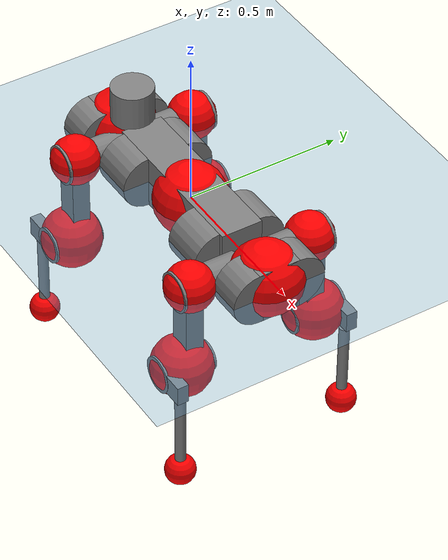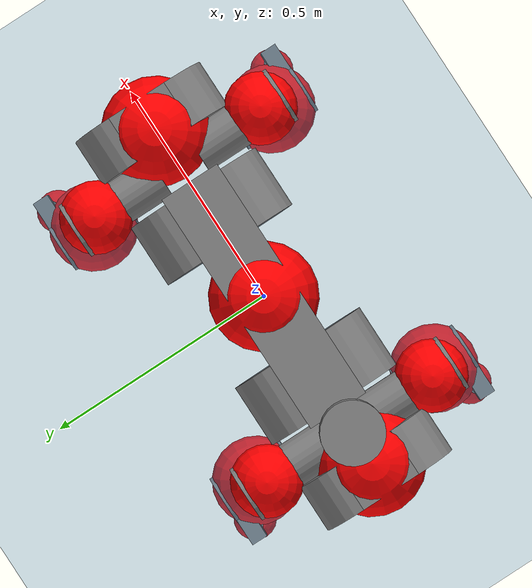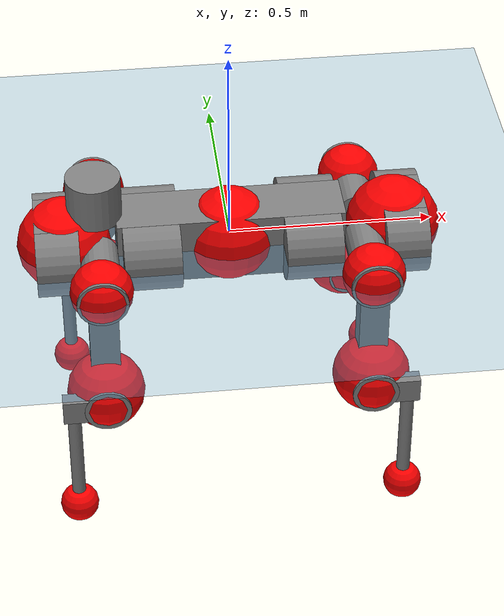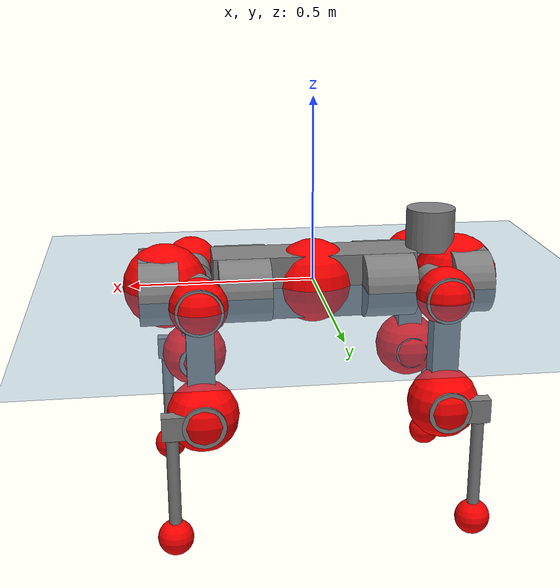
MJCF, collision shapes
<mujoco model="anymal_c">
  <compiler angle="radian" assetdir="assets" balanceinertia="true" inertiafromgeom="false"/>

  <option timestep="0.005" density="1.2" viscosity="2e-05"/>

  <size nkey="1"/>

  <visual>
    <quality shadowsize="8192"/>
    <map shadowclip="0.5"/>
  </visual>

  <default>
    <default class="/">
      <material specular="0" shininess="0.25"/>
      <geom contype="0" conaffinity="0" group="1" solref="-1000 -80"/>
      <site size="0.01 0.005 0.005" group="5"/>
      <general forcelimited="true" forcerange="-80 80" biastype="affine" gainprm="80" biasprm="0 -80 -2"/>
      <default class="anymal_c">
        <joint armature="0.01" damping="0.01" frictionloss="0.1"/>
        <default class="visual">
          <geom type="mesh" group="2"/>
          <default class="visual_zflip"/>
        </default>
        <default class="collision">
          <geom type="cylinder" group="3"/>
          <default class="foot">
            <geom size="0.03 0 0" type="sphere" condim="6" priority="1" friction="0.8 0.02 0.01" solimp="0.015 1 0.03"/>
          </default>
        </default>
      </default>
      <default class="reward_collision_sphere">
        <geom group="5" rgba="1 0 0 1"/>
      </default>
    </default>
  </default>

  <asset>
    <texture type="skybox" colorspace="auto" name="//unnamed_texture_0" builtin="gradient" rgb1="0.95 0.95 0.95" rgb2="0.95 0.95 0.95" width="100" height="600"/>
    <texture type="2d" colorspace="auto" name="texplane" builtin="checker" rgb1="0.345 0.575 0.748" rgb2="0.345 0.575 0.748" markrgb="1 1 1" width="512" height="512"/>
    <texture type="2d" colorspace="linear" name="base" file="base.png"/>
    <texture type="2d" colorspace="linear" name="top_shell" file="top_shell.png"/>
    <texture type="2d" colorspace="linear" name="bottom_shell" file="bottom_shell.png"/>
    <texture type="2d" colorspace="linear" name="remote" file="remote.png"/>
    <texture type="2d" colorspace="linear" name="hatch" file="hatch.png"/>
    <texture type="2d" colorspace="linear" name="handle" file="handle.png"/>
    <texture type="2d" colorspace="linear" name="face" file="face.png"/>
    <texture type="2d" colorspace="linear" name="battery" file="battery.png"/>
    <texture type="2d" colorspace="linear" name="lidar_cage" file="lidar_cage.png"/>
    <texture type="2d" colorspace="linear" name="depth_camera" file="depth_camera.png"/>
    <texture type="2d" colorspace="linear" name="wide_angle_camera" file="wide_angle_camera.png"/>
    <texture type="2d" colorspace="linear" name="lidar" file="lidar.png"/>
    <texture type="2d" colorspace="linear" name="drive" file="drive.png"/>
    <texture type="2d" colorspace="linear" name="hip_l" file="hip_l.png"/>
    <texture type="2d" colorspace="linear" name="shank_l" file="shank_l.png"/>
    <texture type="2d" colorspace="linear" name="foot" file="foot.png"/>
    <texture type="2d" colorspace="linear" name="thigh" file="thigh.png"/>
    <texture type="2d" colorspace="linear" name="shank_r" file="shank_r.png"/>
    <texture type="2d" colorspace="linear" name="hip_r" file="hip_r.png"/>
    <material name="MatPlane" class="/" texture="texplane" texuniform="true" texrepeat="2 2" specular="0.9" shininess="0.5"/>
    <material name="black_plastic" class="/" rgba="0.007 0.007 0.007 1"/>
    <material name="green" class="/" rgba="0.052 0.178 0.033 1"/>
    <material name="red" class="/" rgba="0.178 0.006 0.005 1"/>
    <material name="yellow" class="/" rgba="0.178 0.119 0.006 1"/>
    <material name="lwl" class="/" rgba="0.8 0.8 0.8 1"/>
    <material name="base" class="/" texture="base"/>
    <material name="top_shell" class="/" texture="top_shell"/>
    <material name="bottom_shell" class="/" texture="bottom_shell"/>
    <material name="hip_l" class="/" texture="hip_l"/>
    <material name="thigh" class="/" texture="thigh"/>
    <material name="shank_l" class="/" texture="shank_l"/>
    <material name="foot" class="/" texture="foot"/>
    <material name="hip_r" class="/" texture="hip_r"/>
    <material name="shank" class="/" texture="shank_r"/>
    <material name="hatch" class="/" texture="hatch"/>
    <material name="remote" class="/" texture="remote"/>
    <material name="handle" class="/" texture="handle"/>
    <material name="face" class="/" texture="face"/>
    <material name="depth_camera" class="/" texture="depth_camera"/>
    <material name="wide_angle_camera" class="/" texture="wide_angle_camera"/>
    <material name="battery" class="/" texture="battery"/>
    <material name="lidar_cage" class="/" texture="lidar_cage"/>
    <material name="lidar" class="/" texture="lidar"/>
    <material name="drive" class="/" texture="drive"/>
    <mesh name="base_0" class="/" file="base_0.obj"/>
    <mesh name="base_1" class="/" file="base_1.obj"/>
    <mesh name="base_2" class="/" file="base_2.obj"/>
    <mesh name="base_3" class="/" file="base_3.obj"/>
    <mesh name="base_4" class="/" file="base_4.obj"/>
    <mesh name="base_5" class="/" file="base_5.obj"/>
    <mesh name="top_shell" class="/" file="top_shell.obj"/>
    <mesh name="bottom_shell" class="/" file="bottom_shell.obj"/>
    <mesh name="remote" class="/" file="remote.obj"/>
    <mesh name="handle" class="/" file="handle.obj"/>
    <mesh name="face" class="/" file="face.obj"/>
    <mesh name="wide_angle_camera" class="/" file="wide_angle_camera.obj"/>
    <mesh name="depth_camera" class="/" file="depth_camera.obj"/>
    <mesh name="battery" class="/" file="battery.obj"/>
    <mesh name="lidar_cage" class="/" file="lidar_cage.obj"/>
    <mesh name="lidar" class="/" file="lidar.obj"/>
    <mesh name="drive" class="/" file="drive.obj"/>
    <mesh name="hip_l" class="/" file="hip_l.obj"/>
    <mesh name="thigh" class="/" file="thigh.obj"/>
    <mesh name="shank_l" class="/" file="shank_l.obj"/>
    <mesh name="foot" class="/" file="foot.obj"/>
    <mesh name="hip_r" class="/" file="hip_r.obj"/>
    <mesh name="hatch" class="/" file="hatch.obj"/>
    <mesh name="shank_r" class="/" file="shank_r.obj"/>
  </asset>

  <worldbody>
    <geom name="floor" class="/" size="100 100 0.125" type="plane" group="0" material="MatPlane"/>
    <light name="toplight_shadow" class="/" pos="0 0 5" dir="0.0990148 0.0990148 -0.990148" type="directional" ambient="0.04 0.04 0.04" diffuse="0.55 0.55 0.55" specular="0.12 0.12 0.12"/>
    <light name="toplight_fill" class="/" pos="0 0 5" dir="0.0990148 0.0990148 -0.990148" type="directional" castshadow="false" ambient="0.04 0.04 0.04" diffuse="0.3 0.3 0.3" specular="0.08 0.08 0.08"/>
    <body name="trunk" childclass="anymal_c" pos="-4.80878e-05 0.000119027 -0.00243926" quat="1 0.000125647 -7.06428e-05 -0.000192223">
      <inertial pos="0.00208463 0.0026422 0.0527444" quat="0.499817 0.499923 0.499627 0.500632" mass="16.2529" diaginertia="0.383633 0.460992 0.240315"/>
      <joint name="//unnamed_joint_0" type="free" armature="0" damping="0" frictionloss="0"/>
      <geom name="//unnamed_geom_1" class="visual" material="green" mesh="base_0"/>
      <geom name="//unnamed_geom_2" class="visual" material="yellow" mesh="base_1"/>
      <geom name="//unnamed_geom_3" class="visual" material="red" mesh="base_2"/>
      <geom name="//unnamed_geom_4" class="visual" material="black_plastic" mesh="base_3"/>
      <geom name="//unnamed_geom_5" class="visual" material="lwl" mesh="base_4"/>
      <geom name="//unnamed_geom_6" class="visual" material="base" mesh="base_5"/>
      <geom name="trunk_1" class="collision" size="0.277565 0.0669984 0.0861408" type="box"/>
      <geom name="trunk_2" class="collision" size="0.0861408 0.0693912" pos="0.19579 0.0662147 0" quat="0.707107 0 0.707107 0"/>
      <geom name="trunk_3" class="collision" size="0.0861408 0.0693912" pos="-0.19579 0.0662147 0" quat="0.707107 0 0.707107 0"/>
      <geom name="trunk_4" class="collision" size="0.0861408 0.0693912" pos="0.19579 -0.0662147 0" quat="0.707107 0 0.707107 0"/>
      <geom name="trunk_5" class="collision" size="0.0861408 0.0693912" pos="-0.19579 -0.0662147 0" quat="0.707107 0 0.707107 0"/>
      <geom name="//unnamed_geom_12" class="visual" material="top_shell" mesh="top_shell"/>
      <geom name="//unnamed_geom_13" class="visual" material="bottom_shell" mesh="bottom_shell"/>
      <geom name="//unnamed_geom_14" class="visual" material="remote" mesh="remote"/>
      <geom name="//unnamed_geom_15" class="visual" material="handle" mesh="handle"/>
      <geom name="//unnamed_geom_16" class="visual" pos="0.373126 0 0" quat="1 0 0 0" material="face" mesh="face"/>
      <geom name="trunk_6" class="collision" size="0.0526416 0.0669984 0.0861408" pos="0.422636 0 0" type="box"/>
      <geom name="//unnamed_geom_18" class="collision" size="0.0861408 0.0526416" pos="0.422636 0.0662147 0" quat="0.707107 0 0.707107 0"/>
      <geom name="//unnamed_geom_19" class="collision" size="0.0861408 0.0526416" pos="0.422636 -0.0662147 0" quat="0.707107 0 0.707107 0"/>
      <geom name="//unnamed_geom_20" class="visual" pos="0.415575 0 -0.0308879" quat="0.965926 0 0.258819 0" material="depth_camera" mesh="depth_camera"/>
      <geom name="//unnamed_geom_21" class="visual" pos="0.461794 0 0.015348" material="wide_angle_camera" mesh="wide_angle_camera"/>
      <geom name="//unnamed_geom_22" class="visual_zflip" pos="-0.373126 0 0" quat="0 0 0 1" material="face" mesh="face"/>
      <geom name="trunk_7" class="collision" size="0.0526416 0.0669984 0.0861408" pos="-0.422636 0 0" quat="0 0 0 1" type="box"/>
      <geom name="//unnamed_geom_24" class="collision" size="0.0861408 0.0526416" pos="-0.422636 -0.0662147 0" quat="0 -0.707107 0 0.707107"/>
      <geom name="//unnamed_geom_25" class="collision" size="0.0861408 0.0526416" pos="-0.422636 0.0662147 0" quat="0 -0.707107 0 0.707107"/>
      <geom name="//unnamed_geom_26" class="visual" pos="-0.415575 0 -0.0308879" quat="0 -0.258819 0 0.965926" material="depth_camera" mesh="depth_camera"/>
      <geom name="//unnamed_geom_27" class="visual_zflip" pos="-0.461794 0 0.015348" quat="0 0 0 1" material="wide_angle_camera" mesh="wide_angle_camera"/>
      <geom name="//unnamed_geom_28" class="visual" material="battery" mesh="battery"/>
      <geom name="//unnamed_geom_29" class="visual" pos="0 0.0729307 0.0288331" quat="0.683013 -0.183013 0.183013 0.683013" material="depth_camera" mesh="depth_camera"/>
      <geom name="//unnamed_geom_30" class="visual" pos="0 -0.0729307 0.0288331" quat="0.683013 0.183013 0.183013 -0.683013" material="depth_camera" mesh="depth_camera"/>
      <geom name="//unnamed_geom_31" class="visual" pos="-0.327667 0 0.075356" quat="1 0 0 0" material="lidar_cage" mesh="lidar_cage"/>
      <geom name="trunk_8" class="collision" size="0.0669984 0.0574272" pos="-0.327667 0 0.136871"/>
      <geom name="//unnamed_geom_33" class="visual" pos="-0.327667 1.797e-05 0.145791" quat="0.707107 0 0 -0.707107" material="lidar" mesh="lidar"/>
      <geom name="//unnamed_geom_34" class="visual" pos="0.269965 0.0984043 -1.36842e-09" quat="0.258819 0.965926 0 0" material="drive" mesh="drive"/>
      <geom name="//unnamed_geom_35" class="visual" pos="0.269965 -0.0984043 1.36842e-09" quat="0.258819 -0.965926 0 0" material="drive" mesh="drive"/>
      <geom name="//unnamed_geom_36" class="visual" pos="-0.269965 0.0984043 1.36842e-09" quat="0 0 0.965926 -0.258819" material="drive" mesh="drive"/>
      <geom name="//unnamed_geom_37" class="visual" pos="-0.269965 -0.0984043 -1.36842e-09" quat="0 0 -0.965926 -0.258819" material="drive" mesh="drive"/>
      <geom name="//unnamed_geom_38" class="visual" pos="0.104421 0 0.0748434" quat="1 0 0 0" material="hatch" mesh="hatch"/>
      <geom name="//unnamed_geom_39" class="reward_collision_sphere" size="0.114854"/>
      <geom name="//unnamed_geom_40" class="reward_collision_sphere" size="0.114854" pos="0.405083 0 0"/>
      <geom name="//unnamed_geom_41" class="reward_collision_sphere" size="0.114854" pos="-0.405083 0 0"/>
      <site name="imu" pos="0.223634 9.23204e-05 0.0483563" size="0.0095712"/>
      <camera name="track" pos="0 -1.89185 0" quat="0.707107 0.707107 0 0" mode="trackcom"/>
      <camera name="ego_camera" pos="0.405083 0 -0.0410101" quat="-0.5 -0.5 0.5 0.5"/>
      <body name="LF_HIP" pos="0.269924 0.0973278 -0.00123846" quat="0.258775 0.965938 -3.58154e-05 0.000332003">
        <inertial pos="0.0482883 -0.0146976 -0.00969691" quat="-0.125232 0.707164 -0.136601 0.682332" mass="2.47628" diaginertia="0.0034778 0.00368141 0.00383136"/>
        <joint name="LF_HAA" pos="0 0 0" axis="0.999997 -0.000160264 0.00240051" range="-0.732017 0.486449" armature="0.0105465" damping="0.0177094" frictionloss="0.0824699"/>
        <geom name="//unnamed_geom_42" class="visual" pos="0 -8.04977e-05 1.32217e-05" quat="0.258819 -0.965926 0 0" material="hip_l" mesh="hip_l"/>
        <geom name="//unnamed_geom_43" class="visual" pos="0.053921 -0.0659672 -0.0386729" quat="0.183013 -0.683013 0.683013 0.183013" material="drive" mesh="drive"/>
        <geom name="//unnamed_geom_44" class="collision" size="0.047856 0.0669984" pos="0.053921 -0.0113131 -0.00707936" quat="-0.353553 -0.612372 0.612372 -0.353553"/>
        <body name="LF_THIGH" pos="0.0541021 -0.068482 -0.0422021" quat="0.182911 -0.68304 0.683073 0.18279">
          <inertial pos="0.027453 5.52702e-05 -0.253329" quat="0.993335 -0.00536055 -0.0800728 0.0827345" mass="2.57131" diaginertia="0.0178396 0.0225795 0.00443165"/>
          <joint name="LF_HFE" pos="0 0 0" axis="0.999994 0.00267318 0.00235273" range="-3.18888 3.15189" armature="0.0092927" damping="0.00978593" frictionloss="0.0928672"/>
          <geom name="//unnamed_geom_45" class="visual" pos="-0.000910044 -1.43402e-06 0" quat="0.707107 0 0 -0.707107" material="thigh" mesh="thigh"/>
          <geom name="//unnamed_geom_46" class="collision" size="0.0622128 0.0382848" pos="0.0360074 0 0" quat="0.5 0.5 -0.5 -0.5"/>
          <geom name="//unnamed_geom_47" class="collision" size="0.035892 0.0287136 0.135254" pos="0.0270055 0 -0.144882" quat="0.707107 0 0 -0.707107" type="box"/>
          <geom name="//unnamed_geom_48" class="visual" pos="0.0902885 0 -0.292197" quat="1 0 0 0" material="drive" mesh="drive"/>
          <geom name="//unnamed_geom_49" class="collision" size="0.047856 0.0669984" pos="0.0272756 0 -0.292197" quat="0.707107 0 0.707107 0"/>
          <geom name="//unnamed_geom_50" class="reward_collision_sphere" size="0.0765696" pos="0.0225046 0 0"/>
          <body name="LF_SHANK" pos="0.0902493 0.00181809 -0.290133" quat="0.999999 -0.000864841 0.000949371 0.000580593">
            <inertial pos="0.00501248 -0.0578715 -0.08242" quat="0.992932 -0.115929 -0.00104968 -0.0254099" mass="0.49878" diaginertia="0.00600569 0.00685437 0.00122505"/>
            <joint name="LF_KFE" pos="0 0 0" axis="0.999983 0.00237369 -0.005375" range="-3.15778 3.16067" armature="0.00932859" damping="0.0234868" frictionloss="0.0839701"/>
            <geom name="//unnamed_geom_51" class="visual" pos="-0.000296745 -0.00158226 0" quat="0.707107 0 0 -0.707107" material="shank_l" mesh="shank_l"/>
            <geom name="LF_kfe_act" class="collision" size="0.0574272 0.0191424" pos="0.0180037 0 0" quat="0.5 0.5 -0.5 -0.5"/>
            <geom name="//unnamed_geom_53" class="collision" size="0.0550334 0.0323028 0.0181853" pos="0.0180037 -0.0543897 0" quat="0.5 0.5 -0.5 -0.5" type="box"/>
            <geom name="//unnamed_geom_54" class="visual" pos="0.0117475 -0.0837039 -0.346504" quat="0.382683 0 0 -0.92388" material="foot" mesh="foot"/>
            <geom name="LF_calf" class="collision" size="0.0167496 0.135195" pos="0.0117474 -0.083194 -0.173252" quat="0.707107 0 0 -0.707107"/>
            <geom name="LF_foot" class="foot" size="0.0313434" pos="0.0117474 -0.083194 -0.323436" quat="0.707107 0 0 -0.707107"/>
            <geom name="//unnamed_geom_57" class="reward_collision_sphere" size="0.095712" pos="-0.0450092 0 0"/>
            <geom name="//unnamed_geom_58" class="reward_collision_sphere" size="0.047856" pos="0.0117474 -0.083194 -0.323436"/>
            <site name="LF_foot" class="foot" pos="0.0117474 -0.083194 -0.323436" quat="0.707107 0 0 -0.707107" size="0.0095712"/>
          </body>
        </body>
      </body>
      <body name="RF_HIP" pos="0.270659 -0.100835 0.000440663" quat="0.258289 -0.966067 -0.00124343 -1.83986e-05">
        <inertial pos="0.0511949 0.0137694 -0.00747186" quat="0.1352 0.679024 0.128083 0.7101" mass="2.34046" diaginertia="0.00334952 0.0035438 0.00372239"/>
        <joint name="RF_HAA" pos="0 0 0" axis="1 0.000123301 1.37731e-05" range="-0.440706 0.666881" armature="0.0093541" damping="0.00648502" frictionloss="0.0856532"/>
        <geom name="//unnamed_geom_59" class="visual" pos="0 8.0497e-05 1.32216e-05" quat="0.258819 0.965926 0 0" material="hip_r" mesh="hip_r"/>
        <geom name="//unnamed_geom_60" class="visual" pos="0.053921 0.0659672 -0.0386729" quat="0.183013 0.683013 0.683013 -0.183013" material="drive" mesh="drive"/>
        <geom name="//unnamed_geom_61" class="collision" size="0.047856 0.0669984" pos="0.053921 0.0113131 -0.00707936" quat="-0.353553 0.612372 0.612372 0.353553"/>
        <body name="RF_THIGH" pos="0.0565923 0.0704072 -0.042895" quat="0.182989 0.682963 0.68306 -0.183044">
          <inertial pos="0.0283569 0.000931868 -0.251636" quat="0.992814 -0.0049272 -0.0800592 0.0888014" mass="2.73152" diaginertia="0.0177883 0.0231182 0.0048174"/>
          <joint name="RF_HFE" pos="0 0 0" axis="0.999932 -0.00741075 0.00905215" stiffness="0.00644187" range="-3.09537 3.08427" armature="0.00983758" damping="0" frictionloss="0.100166"/>
          <geom name="//unnamed_geom_62" class="visual" pos="-0.000910044 -1.43402e-06 0" quat="0.707107 0 0 -0.707107" material="thigh" mesh="thigh"/>
          <geom name="//unnamed_geom_63" class="collision" size="0.0622128 0.0382848" pos="0.0360074 0 0" quat="0.5 0.5 0.5 0.5"/>
          <geom name="//unnamed_geom_64" class="collision" size="0.035892 0.0287136 0.135254" pos="0.0270055 0 -0.144882" quat="0.707107 0 0 0.707107" type="box"/>
          <geom name="//unnamed_geom_65" class="visual" pos="0.0902885 0 -0.292197" quat="1 0 0 0" material="drive" mesh="drive"/>
          <geom name="//unnamed_geom_66" class="collision" size="0.047856 0.0669984" pos="0.0272756 0 -0.292197" quat="0.707107 0 0.707107 0"/>
          <geom name="//unnamed_geom_67" class="reward_collision_sphere" size="0.0765696" pos="0.0225046 0 0"/>
          <body name="RF_SHANK" pos="0.0931533 -0.000926247 -0.290897" quat="1 -0.000377485 6.42794e-05 -0.000409782">
            <inertial pos="0.00501117 0.0589113 -0.0800584" quat="0.992806 0.116924 -0.00351358 0.0255626" mass="0.50034" diaginertia="0.00612935 0.00693254 0.00125618"/>
            <joint name="RF_KFE" pos="0 0 0" axis="0.999942 -0.0090131 -0.00588079" range="-3.14328 3.08151" armature="0.0094079" damping="0.00405178" frictionloss="0.0845294"/>
            <geom name="//unnamed_geom_68" class="visual" pos="-0.000296744 0.00158226 0" quat="0.707107 0 0 0.707107" material="shank" mesh="shank_r"/>
            <geom name="RF_kfe_act" class="collision" size="0.0574272 0.0191424" pos="0.0180037 0 0" quat="0.5 0.5 0.5 0.5"/>
            <geom name="//unnamed_geom_70" class="collision" size="0.0550334 0.0323028 0.0181853" pos="0.0180037 0.0543897 0" quat="0.5 0.5 0.5 0.5" type="box"/>
            <geom name="//unnamed_geom_71" class="visual" pos="0.0117473 0.0837039 -0.346504" quat="0.382683 0 0 0.92388" material="foot" mesh="foot"/>
            <geom name="RF_calf" class="collision" size="0.0167496 0.135195" pos="0.0117474 0.083194 -0.173252" quat="0.707107 0 0 0.707107"/>
            <geom name="RF_foot" class="foot" size="0.028" pos="0.0117474 0.083194 -0.323436" quat="0.707107 0 0 0.707107"/>
            <geom name="//unnamed_geom_74" class="reward_collision_sphere" size="0.095712" pos="-0.0450092 0 0"/>
            <geom name="//unnamed_geom_75" class="reward_collision_sphere" size="0.047856" pos="0.0117474 0.083194 -0.323436"/>
            <site name="RF_foot" class="foot" pos="0.0117474 0.083194 -0.323436" quat="0.707107 0 0 0.707107" size="0.0095712"/>
          </body>
        </body>
      </body>
      <body name="LH_HIP" pos="-0.268335 0.100826 0.000520795" quat="0.00013958 0.000320207 0.965935 -0.258784">
        <inertial pos="0.0499995 0.0114794 -0.00961032" quat="0.139133 0.68409 0.133476 0.703454" mass="2.36988" diaginertia="0.00345802 0.00382796 0.00369133"/>
        <joint name="LH_HAA" pos="0 0 0" axis="0.999941 -0.00378466 0.0101945" range="-0.513265 0.702657" armature="0.00949561" damping="0" frictionloss="0.10216"/>
        <geom name="//unnamed_geom_76" class="visual" pos="0 8.0497e-05 1.32216e-05" quat="-0.258819 -0.965926 0 0" material="hip_r" mesh="hip_r"/>
        <geom name="//unnamed_geom_77" class="visual" pos="0.053921 0.0659672 -0.0386729" quat="0.183013 0.683013 0.683013 -0.183013" material="drive" mesh="drive"/>
        <geom name="//unnamed_geom_78" class="collision" size="0.047856 0.0669984" pos="0.053921 0.0113131 -0.00707936" quat="-0.353553 0.612372 0.612372 0.353553"/>
        <body name="LH_THIGH" pos="0.0535576 0.0654989 -0.043438" quat="0.183967 0.682884 0.682969 -0.182698">
          <inertial pos="0.0279683 -0.00252043 -0.251578" quat="0.992613 -0.00516551 -0.0810027 0.0901761" mass="2.68828" diaginertia="0.0187344 0.0229355 0.00497007"/>
          <joint name="LH_HFE" pos="0 0 0" axis="0.999997 -5.28813e-05 0.00225386" range="-3.14377 3.13625" armature="0.00948777" damping="0.0127272" frictionloss="0.0965505"/>
          <geom name="//unnamed_geom_79" class="visual" pos="-0.000910044 -1.43402e-06 0" quat="0.707107 0 0 -0.707107" material="thigh" mesh="thigh"/>
          <geom name="//unnamed_geom_80" class="collision" size="0.0622128 0.0382848" pos="0.0360074 0 0" quat="0.5 0.5 -0.5 -0.5"/>
          <geom name="//unnamed_geom_81" class="collision" size="0.035892 0.0287136 0.135254" pos="0.0270055 0 -0.144882" quat="0.707107 0 0 -0.707107" type="box"/>
          <geom name="//unnamed_geom_82" class="visual" pos="0.0902885 0 -0.292197" quat="1 0 0 0" material="drive" mesh="drive"/>
          <geom name="//unnamed_geom_83" class="collision" size="0.047856 0.0669984" pos="0.0272756 0 -0.292197" quat="0.707107 0 0.707107 0"/>
          <geom name="//unnamed_geom_84" class="reward_collision_sphere" size="0.0765696" pos="0.0225046 0 0"/>
          <body name="LH_SHANK" pos="0.0925823 -0.000462582 -0.291848" quat="0.999999 -0.000803817 -0.000919387 -0.000226989">
            <inertial pos="0.00757905 0.0579076 -0.084985" quat="0.992935 0.115945 -0.000906625 0.0252371" mass="0.511259" diaginertia="0.00619503 0.00743036 0.00133686"/>
            <joint name="LH_KFE" pos="0 0 0" axis="0.999998 0.000528487 -0.00187314" range="-3.14026 3.09794" armature="0.00958915" damping="0.0215244" frictionloss="0.101017"/>
            <geom name="//unnamed_geom_85" class="visual" pos="-0.000296744 0.00158226 0" quat="-0.707107 0 0 -0.707107" material="shank" mesh="shank_r"/>
            <geom name="LH_kfe_act" class="collision" size="0.0574272 0.0191424" pos="0.0180037 0 0" quat="0.5 0.5 -0.5 -0.5"/>
            <geom name="//unnamed_geom_87" class="collision" size="0.0550334 0.0323028 0.0181853" pos="0.0180037 0.0543897 0" quat="0.5 0.5 -0.5 -0.5" type="box"/>
            <geom name="//unnamed_geom_88" class="visual" pos="0.0117473 0.0837039 -0.346504" quat="-0.382683 0 0 -0.92388" material="foot" mesh="foot"/>
            <geom name="LH_calf" class="collision" size="0.0167496 0.135195" pos="0.0117474 0.083194 -0.173252" quat="0.707107 0 0 -0.707107"/>
            <geom name="LH_foot" class="foot" size="0.0269218" pos="0.0117474 0.083194 -0.323436" quat="0.707107 0 0 -0.707107"/>
            <geom name="//unnamed_geom_91" class="reward_collision_sphere" size="0.095712" pos="-0.0450092 0 0"/>
            <geom name="//unnamed_geom_92" class="reward_collision_sphere" size="0.047856" pos="0.0117474 0.083194 -0.323436"/>
            <site name="LH_foot" class="foot" pos="0.0117474 0.083194 -0.323436" quat="0.707107 0 0 -0.707107" size="0.0095712"/>
          </body>
        </body>
      </body>
      <body name="RH_HIP" pos="-0.27021 -0.0956282 -0.00160043" quat="0.000980618 0.000962697 -0.966133 -0.258042">
        <inertial pos="0.0500256 -0.0134609 -0.00959881" quat="-0.136961 0.706263 -0.14203 0.679898" mass="2.39157" diaginertia="0.00345192 0.00356971 0.00362021"/>
        <joint name="RH_HAA" pos="0 0 0" axis="0.999998 0.00129142 0.00131628" range="-0.778944 0.477238" armature="0.0081175" damping="0.0146948" frictionloss="0.105444"/>
        <geom name="//unnamed_geom_93" class="visual" pos="0 -8.04977e-05 1.32217e-05" quat="-0.258819 0.965926 0 0" material="hip_l" mesh="hip_l"/>
        <geom name="//unnamed_geom_94" class="visual" pos="0.053921 -0.0659672 -0.0386729" quat="-0.183013 0.683013 -0.683013 -0.183013" material="drive" mesh="drive"/>
        <geom name="//unnamed_geom_95" class="collision" size="0.047856 0.0669984" pos="0.053921 -0.0113131 -0.00707936" quat="0.353553 0.612372 -0.612372 0.353553"/>
        <body name="RH_THIGH" pos="0.0547325 -0.0679371 -0.0451223" quat="-0.183172 0.682993 -0.683 -0.182976">
          <inertial pos="0.0280426 0.00225653 -0.249962" quat="0.994225 -0.0135547 -0.0751871 0.0753683" mass="2.62629" diaginertia="0.017351 0.0218402 0.00463586"/>
          <joint name="RH_HFE" pos="0 0 0" axis="0.999943 0.0106741 -0.000231245" stiffness="0.00910697" range="-3.12914 3.08795" armature="0.0108038" damping="0.00839917" frictionloss="0.0940446"/>
          <geom name="//unnamed_geom_96" class="visual" pos="-0.000910044 -1.43402e-06 0" quat="0.707107 0 0 -0.707107" material="thigh" mesh="thigh"/>
          <geom name="//unnamed_geom_97" class="collision" size="0.0622128 0.0382848" pos="0.0360074 0 0" quat="0.5 0.5 0.5 0.5"/>
          <geom name="//unnamed_geom_98" class="collision" size="0.035892 0.0287136 0.135254" pos="0.0270055 0 -0.144882" quat="0.707107 0 0 0.707107" type="box"/>
          <geom name="//unnamed_geom_99" class="visual" pos="0.0902885 0 -0.292197" quat="1 0 0 0" material="drive" mesh="drive"/>
          <geom name="//unnamed_geom_100" class="collision" size="0.047856 0.0669984" pos="0.0272756 0 -0.292197" quat="0.707107 0 0.707107 0"/>
          <geom name="//unnamed_geom_101" class="reward_collision_sphere" size="0.0765696" pos="0.0225046 0 0"/>
          <body name="RH_SHANK" pos="0.0878953 -0.0022396 -0.292521" quat="0.999999 0.000217401 -0.00132521 0.000118571">
            <inertial pos="0.00626795 -0.0581493 -0.0824261" quat="0.992967 -0.114489 0.0116355 -0.0278141" mass="0.490372" diaginertia="0.00583532 0.00692365 0.00128341"/>
            <joint name="RH_KFE" pos="0 0 0" axis="0.999958 0.000549766 0.00912731" stiffness="0.00996539" range="-3.07336 3.19132" armature="0.00947551" damping="0.00699881" frictionloss="0.0908529"/>
            <geom name="//unnamed_geom_102" class="visual" pos="-0.000296745 -0.00158226 0" quat="0.707107 0 0 -0.707107" material="shank_l" mesh="shank_l"/>
            <geom name="RH_kfe_act" class="collision" size="0.0574272 0.0191424" pos="0.0180037 0 0" quat="0.5 0.5 0.5 0.5"/>
            <geom name="//unnamed_geom_104" class="collision" size="0.0550334 0.0323028 0.0181853" pos="0.0180037 -0.0543897 0" quat="0.5 0.5 0.5 0.5" type="box"/>
            <geom name="//unnamed_geom_105" class="visual" pos="0.0117475 -0.0837039 -0.346504" quat="0.382683 0 0 -0.92388" material="foot" mesh="foot"/>
            <geom name="RH_calf" class="collision" size="0.0167496 0.135195" pos="0.0117474 -0.083194 -0.173252" quat="0.707107 0 0 0.707107"/>
            <geom name="RH_foot" class="foot" size="0.0257088" pos="0.0117474 -0.083194 -0.323436" quat="0.707107 0 0 0.707107"/>
            <geom name="//unnamed_geom_108" class="reward_collision_sphere" size="0.095712" pos="-0.0450092 0 0"/>
            <geom name="//unnamed_geom_109" class="reward_collision_sphere" size="0.047856" pos="0.0117474 -0.083194 -0.323436"/>
            <site name="RH_foot" class="foot" pos="0.0117474 -0.083194 -0.323436" quat="0.707107 0 0 0.707107" size="0.0095712"/>
          </body>
        </body>
      </body>
    </body>
  </worldbody>

  <contact>
    <pair class="/" geom1="floor" geom2="LF_foot" name="//unnamed_contact_0"/>
    <pair class="/" geom1="floor" geom2="RF_foot" name="//unnamed_contact_1"/>
    <pair class="/" geom1="floor" geom2="LH_foot" name="//unnamed_contact_2"/>
    <pair class="/" geom1="floor" geom2="RH_foot" name="//unnamed_contact_3"/>
  </contact>

  <actuator>
    <general name="LF_HAA" class="/" joint="LF_HAA" forcerange="-73.1921 73.1921" gainprm="82.5899" biasprm="0 -82.5899 -1.99295"/>
    <general name="LF_HFE" class="/" joint="LF_HFE" forcerange="-69.8246 69.8246" gainprm="82.5899" biasprm="0 -82.5899 -1.99295"/>
    <general name="LF_KFE" class="/" joint="LF_KFE" forcerange="-74.6643 74.6643" gainprm="82.5899" biasprm="0 -82.5899 -1.99295"/>
    <general name="RF_HAA" class="/" joint="RF_HAA" forcerange="-79.1381 79.1381" gainprm="82.5899" biasprm="0 -82.5899 -1.99295"/>
    <general name="RF_HFE" class="/" joint="RF_HFE" forcerange="-79.4217 79.4217" gainprm="82.5899" biasprm="0 -82.5899 -1.99295"/>
    <general name="RF_KFE" class="/" joint="RF_KFE" forcerange="-74.3536 74.3536" gainprm="82.5899" biasprm="0 -82.5899 -1.99295"/>
    <general name="LH_HAA" class="/" joint="LH_HAA" forcerange="-83.5448 83.5448" gainprm="82.5899" biasprm="0 -82.5899 -1.99295"/>
    <general name="LH_HFE" class="/" joint="LH_HFE" forcerange="-77.1566 77.1566" gainprm="82.5899" biasprm="0 -82.5899 -1.99295"/>
    <general name="LH_KFE" class="/" joint="LH_KFE" forcerange="-74.1666 74.1666" gainprm="82.5899" biasprm="0 -82.5899 -1.99295"/>
    <general name="RH_HAA" class="/" joint="RH_HAA" forcerange="-69.819 69.819" gainprm="82.5899" biasprm="0 -82.5899 -1.99295"/>
    <general name="RH_HFE" class="/" joint="RH_HFE" forcerange="-79.8612 79.8612" gainprm="82.5899" biasprm="0 -82.5899 -1.99295"/>
    <general name="RH_KFE" class="/" joint="RH_KFE" forcerange="-79.5643 79.5643" gainprm="82.5899" biasprm="0 -82.5899 -1.99295"/>
  </actuator>

  <sensor>
    <gyro site="imu" name="imu_angular_velocity"/>
    <velocimeter site="imu" name="imu_linear_velocity"/>
    <framelinvel objtype="site" objname="LF_foot" name="LF_foot_global_linear_velocity"/>
    <framelinvel objtype="site" objname="RF_foot" name="RF_foot_global_linear_velocity"/>
    <framelinvel objtype="site" objname="LH_foot" name="LH_foot_global_linear_velocity"/>
    <framelinvel objtype="site" objname="RH_foot" name="RH_foot_global_linear_velocity"/>
  </sensor>

  <keyframe>
    <key name="home" qpos="0 0 0.55 1 0 0 0 0 0.4 -0.8 0 -0.4 0.8 0 -0.4 0.8 0 0.4 -0.8"/>
  </keyframe>
</mujoco>
